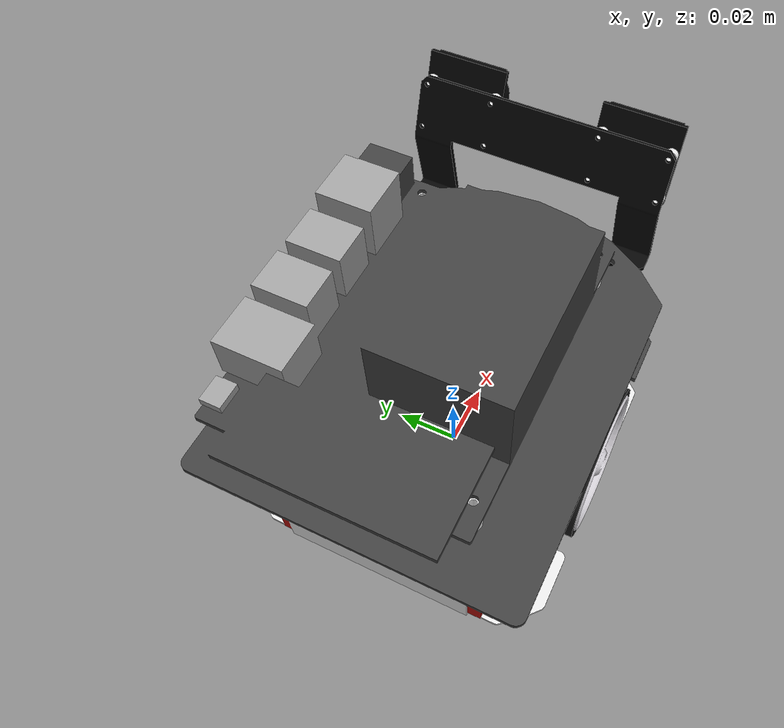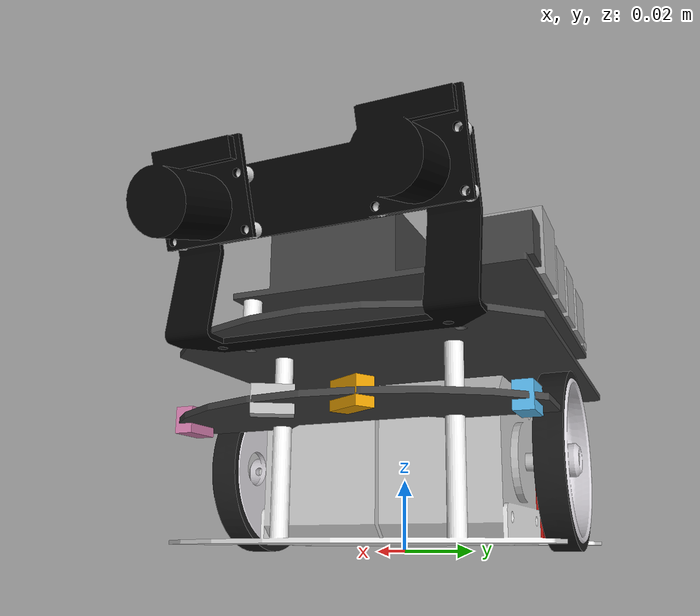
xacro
<?xml version="1.0"?>
<robot name="jetsonmouse_on_gazebo"
       xmlns:sensor="http://playerstage.sourceforge.net/gazebo/xmlschema/#sensor"
       xmlns:controller="http://playerstage.sourceforge.net/gazebo/xmlschema/#controller"
       xmlns:interface="http://playerstage.sourceforge.net/gazebo/xmlschema/#interface"
       xmlns:xacro="http://ros.org/wiki/xacro">

  <xacro:arg name="gazebo_plugin" default="false" />
  <xacro:arg name="tf" default="true" />
  <xacro:arg name="jointstate" default="true" />
  <xacro:arg name="robot_namespace" default="" />
  <xacro:arg name="diffdrive_namespace" default="/" />
  <xacro:arg name="sensor_namespace" default="jetsonmouse_on_gazebo" />
  <xacro:arg name="camera_namespace" default="stereo_camera" />

  <xacro:include filename="$(find jetsonmouse_description)/urdf/common.xacro" />
  <xacro:include filename="$(find jetsonmouse_description)/urdf/body/body.urdf.xacro" />
  <xacro:include filename="$(find jetsonmouse_description)/urdf/wheel/wheel.urdf.xacro" />
  <xacro:include filename="$(find jetsonmouse_description)/urdf/sensors/lightsens.urdf.xacro" />
  <xacro:include filename="$(find jetsonmouse_description)/urdf/camera/camera.gazebo.xacro" />
  <xacro:include filename="$(find jetsonmouse_description)/urdf/wheel/diffdrive.gazebo.xacro" />

  <!-- =============== Link & Joint =============== -->
  <!-- Base -->
  <link name="base_footprint" />

  <xacro:base parent="base_footprint">
    <origin xyz="0 0 0.00185" />
  </xacro:base>

  <!-- Wheel -->
  <xacro:wheel prefix="right" parent="base_link">
    <origin xyz="0 -0.0425 0.02215" rpy="1.57 0 0" />
    <axis xyz="0 0 -1" />
  </xacro:wheel>
  <xacro:wheel prefix="left" parent="base_link">
    <origin xyz="0 0.0425 0.02215" rpy="-1.57 0 0" />
    <axis xyz="0 0 1" />
  </xacro:wheel>

  <!-- Sensors -->
  <xacro:light_sensor prefix="rf" parent="base_link">
    <origin xyz="0.04 -0.045 0.032" rpy="0 0 0" />
  </xacro:light_sensor>

  <xacro:light_sensor prefix="rs" parent="base_link">
    <origin xyz="0.059 -0.01 0.032" rpy="0 0 -1.04" />
  </xacro:light_sensor>

  <xacro:light_sensor prefix="ls" parent="base_link">
    <origin xyz="0.059 0.01 0.032" rpy="0 0 1.04" />
  </xacro:light_sensor>

  <xacro:light_sensor prefix="lf" parent="base_link">
    <origin xyz="0.04 0.045 0.032" rpy="0 0 0" />
  </xacro:light_sensor>

  <!-- =============== Gazebo =============== -->
  <xacro:if value="$(arg gazebo_plugin)">
    <gazebo>
      <plugin name="gazebo_ros_control" filename="libgazebo_ros_control.so">
        <robotNamespace>$(arg robot_namespace)</robotNamespace>
      </plugin>
    </gazebo>

    <!-- Sensors -->
    <xacro:lightsensor_gazebo prefix="rf" base_rad="0"
      rad_range="0.3" min_range="0.01" max_range="0.6"
      robot_namespace="$(arg sensor_namespace)" />
    <xacro:lightsensor_gazebo prefix="rs" base_rad="-1.04"
      rad_range="0.3" min_range="0.01" max_range="0.6"
      robot_namespace="$(arg sensor_namespace)" />
    <xacro:lightsensor_gazebo prefix="ls" base_rad="1.04"
      rad_range="0.3" min_range="0.01" max_range="0.6"
      robot_namespace="$(arg sensor_namespace)" />
    <xacro:lightsensor_gazebo prefix="lf" base_rad="0"
      rad_range="0.3" min_range="0.01" max_range="0.6"
      robot_namespace="$(arg sensor_namespace)" />

    <!-- Cameras -->
    <xacro:camera_gazebo camera_name="right" camera_link="right_camera_link"
      robot_namespace="$(arg camera_namespace)"
      robotdescription_namespace="/" />
    <xacro:camera_gazebo camera_name="left" camera_link="left_camera_link"
      robot_namespace="$(arg camera_namespace)"
      robotdescription_namespace="/" />

    <!-- DiffDriveController -->
    <xacro:diffdrive_gazebo publish_tf="$(arg tf)" publish_jointstate="$(arg jointstate)"
      robot_namespace="$(arg diffdrive_namespace)" />

  </xacro:if>

  <jetsonmouse_on_gazebo />
</robot>

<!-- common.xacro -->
<robot name="common" xmlns:xacro="http://ros.org/wiki/xacro">

  <xacro:property name="wheel_radius" value="0.024" />
  <xacro:property name="wheel_length" value="0.010" />
  <xacro:property name="wheel_mass" value="0.0113" />
  <xacro:property name="wheel_separation" value="0.0925" />

  <!-- PROPERTY LIST -->
  <!-- All units in m-kg-s-radians unit system -->
  <xacro:property name="M_PI" value="3.1415926535897931" />

  <!-- Inertial macros. Units are kg*m^2 -->
  <xacro:macro name="box_inertia" params="m x y z">
    <inertia ixx="${m*(y*y+z*z)/12}" ixy = "0" ixz = "0"
             iyy="${m*(z*z+x*x)/12}" iyz = "0"
             izz="${m*(x*x+y*y)/12}" />
  </xacro:macro>
  <xacro:macro name="cylinder_inertia" params="m r h">
    <inertia ixx="${m*(3*r*r+h*h)/12}" ixy="0" ixz="0"
             iyy="${m*(3*r*r+h*h)/12}" iyz="0"
             izz="${m*r*r/2}" />
  </xacro:macro>
  <xacro:macro name="sphere_inertia" params="m r">
    <inertia ixx="${m*r*r/5}" ixy="0" ixz="0"
             iyy="${m*r*r/5}" iyz="0"
             izz="${m*r*r/5}" />
  </xacro:macro>

</robot>

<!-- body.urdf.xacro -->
<robot xmlns:xacro="http://ros.org/wiki/xacro">

  <xacro:macro name="base" params="parent *joint_origin">
    <joint name="base_joint" type="fixed">
      <xacro:insert_block name="joint_origin" />
      <parent link="${parent}" />
      <child link="base_link" />
    </joint>
    <link name="base_link">
      <visual>
        <geometry>
          <mesh filename="package://jetsonmouse_description/meshes/dae/jetsonmouse_body.dae" />
        </geometry>
      </visual>
      <collision>
        <origin rpy="0 0 0" xyz="0.005 0 0.040" />
        <geometry>
          <box size="0.117 0.080 0.080" />
        </geometry>
      </collision>
      <inertial>
        <origin xyz="-0.005075 -0.000427 0.029879" />
        <mass value="0.7186" />
        <inertia ixx="0.001238161833" ixy="0.000000904986" iyy="0.001368529369" ixz="0.000100297310" iyz="0.000022118177" izz="0.000784319117" />
      </inertial>
    </link>

    <joint name="right_camera_joint" type="fixed">
      <origin xyz="0.063912 -0.0275 0.080798" rpy="${radians(110)} 0 ${radians(90)}" />
      <parent link="base_link" />
      <child link="right_camera_link" />
    </joint>

    <link name="right_camera_link">
      <collision>
          <origin xyz="0 0 0.012" />
          <geometry>
            <cylinder radius="0.008" length="0.015" />
          </geometry>
      </collision>
    </link>

    <joint name="left_camera_joint" type="fixed">
      <origin xyz="0.063912 0.0275 0.080798" rpy="${radians(110)} 0 ${radians(90)}" />
      <parent link="base_link" />
      <child link="left_camera_link" />
    </joint>

    <link name="left_camera_link">
      <collision>
          <origin xyz="0 0 0.012" />
          <geometry>
            <cylinder radius="0.008" length="0.015" />
          </geometry>
      </collision>
    </link>
  </xacro:macro>
</robot>

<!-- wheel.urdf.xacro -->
<robot xmlns:xacro="http://ros.org/wiki/xacro">

  <xacro:include filename="$(find jetsonmouse_description)/urdf/common.xacro" />

  <xacro:macro name="wheel" params="prefix parent *joint_origin *joint_axis">
  <joint name="${prefix}_wheel_joint" type="continuous">
    <xacro:insert_block name="joint_origin" />
    <xacro:insert_block name="joint_axis" />
    <parent link="${parent}" />
    <child link="${prefix}_wheel" />
    <limit effort="70" velocity="15" />
    <safety_controller  k_velocity="10" />
    <dynamics damping="1.0" friction="1.0" />
  </joint>
  <link name="${prefix}_wheel">
    <visual>
      <geometry>
        <mesh filename="package://jetsonmouse_description/meshes/dae/jetsonmouse_wheel.dae" />
      </geometry>
    </visual>
    <collision>
      <origin xyz="0 0 0.003" />
        <geometry>
          <cylinder radius="${wheel_radius}" length="${wheel_length}" />
        </geometry>
    </collision>
      <inertial>
        <origin xyz="-0.000107 0 0.002875" />
        <mass value="${wheel_mass}" />
        <inertia ixx="0.000002208187" ixy="0.000000000001" iyy="0.00000218412" ixz="0.000000004787" iyz="0.000000000003" izz="0.000004078299" />
      </inertial>
  </link>
  </xacro:macro>
</robot>

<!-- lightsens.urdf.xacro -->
<robot name="light_sensor" xmlns:xacro="http://ros.org/wiki/xacro">

  <xacro:include filename="$(find jetsonmouse_description)/urdf/common.xacro" />
  <xacro:include filename="$(find jetsonmouse_description)/urdf/sensors/lightsens.gazebo.xacro" />

  <xacro:macro name="light_sensor" params="prefix parent *joint_origin">
    <joint name="${prefix}_joint" type="fixed">
      <xacro:insert_block name="joint_origin" />
      <parent link="${parent}" />
      <child link="${prefix}" />
    </joint>

    <link name="${prefix}">
      <visual>
        <geometry>
          <box size="0.01 0.005 0.007" />
        </geometry>
      </visual>
      <material name="Gray" />
      <inertial>
        <mass value="0.000001" />
        <origin xyz="0 0 0" />
        <inertia ixx="0.0001" ixy="0.0" ixz="0.0"
          iyy="0.0001" iyz="0.0"
          izz="0.0001" />
      </inertial>
    </link>
  </xacro:macro>
</robot>
